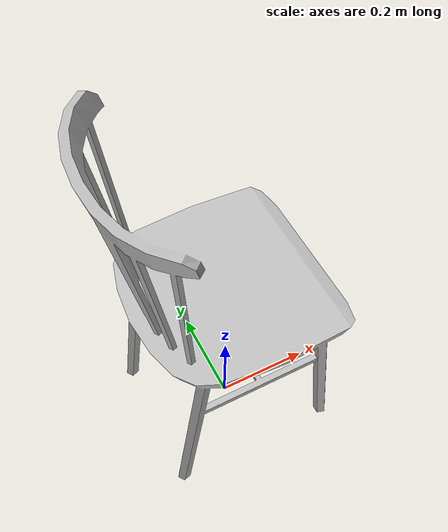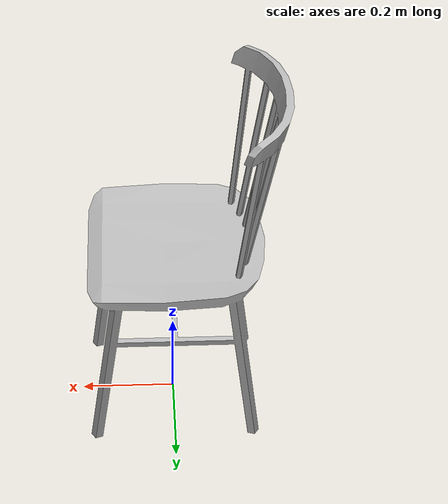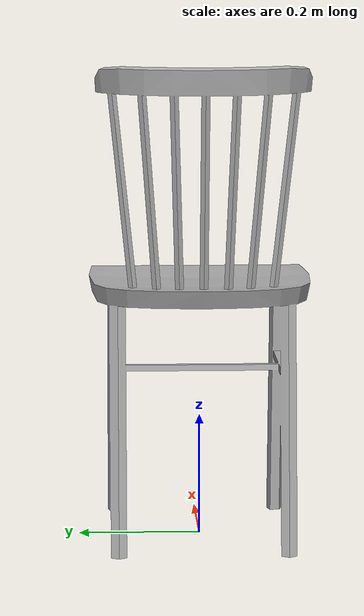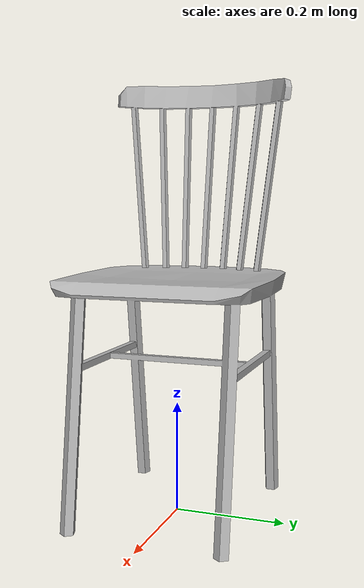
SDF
<?xml version='1.0' encoding='utf-8'?>
<sdf version="1.6">
  <model name="WoodenChair">
   <static>false</static>
    <link name="body">
      <pose>0 0 0 0 0 0</pose>

      <visual name="visual">
        <geometry>
          <mesh>
            <uri>file:///workspaces/robman-final-proj/assets/WoodenChair/meshes/WoodenChair.obj</uri>
          </mesh>
        </geometry>
      </visual>

      <collision name="collision">
        <geometry>
          <mesh>
            <uri>file:///workspaces/robman-final-proj/assets/WoodenChair/meshes/WoodenChair.obj</uri>
          </mesh>
        </geometry>
      </collision>

    </link>
  </model>
</sdf>
